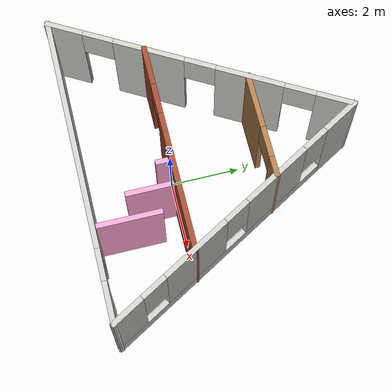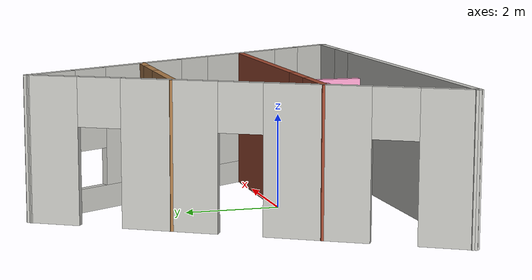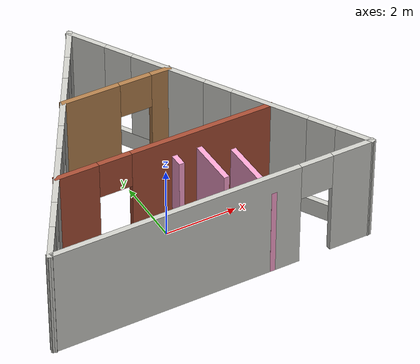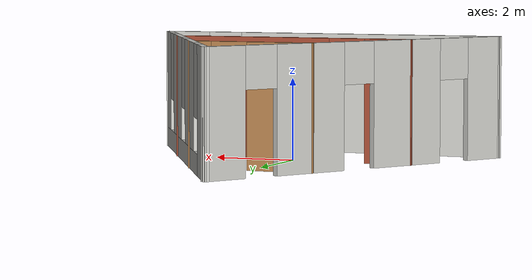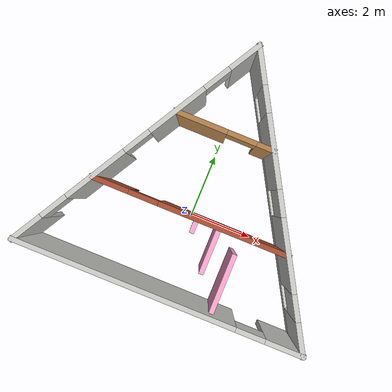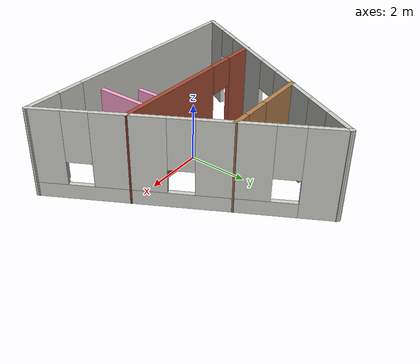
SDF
<?xml version='1.0'?>
<sdf version='1.6'>
  <model name='building'>
    <pose frame=''>3.5e-05 1.364 0 0 -0 0</pose>
    <link name='Wall_17'>
      <pose frame=''>-3.5e-05 -3.832 0 0 -0 3.14159</pose>
      <visual name='Wall_17_Visual_0'>
        <pose frame=''>-3.88835 0 1.5 0 -0 0</pose>
        <geometry>
          <box>
            <size>1.22339 0.15 3</size>
          </box>
        </geometry>
        <material>
          <script>
            <uri>file://media/materials/scripts/gazebo.material</uri>
            <name>Gazebo/CeilingTiled</name>
          </script>
          <ambient>1 1 1 1</ambient>
        </material>
        <meta>
          <layer>0</layer>
        </meta>
      </visual>
      <collision name='Wall_17_Collision_0'>
        <geometry>
          <box>
            <size>1.22339 0.15 3</size>
          </box>
        </geometry>
        <pose frame=''>-3.88835 0 1.5 0 -0 0</pose>
      </collision>
      <visual name='Wall_17_Visual_1'>
        <pose frame=''>1.06169 0 1.5 0 -0 0</pose>
        <geometry>
          <box>
            <size>6.87671 0.15 3</size>
          </box>
        </geometry>
        <material>
          <script>
            <uri>file://media/materials/scripts/gazebo.material</uri>
            <name>Gazebo/CeilingTiled</name>
          </script>
          <ambient>1 1 1 1</ambient>
        </material>
        <meta>
          <layer>0</layer>
        </meta>
      </visual>
      <collision name='Wall_17_Collision_1'>
        <geometry>
          <box>
            <size>6.87671 0.15 3</size>
          </box>
        </geometry>
        <pose frame=''>1.06169 0 1.5 0 -0 0</pose>
      </collision>
      <visual name='Wall_17_Visual_2'>
        <pose frame=''>-2.82666 0 2.5 0 -0 0</pose>
        <geometry>
          <box>
            <size>0.9 0.15 1</size>
          </box>
        </geometry>
        <material>
          <script>
            <uri>file://media/materials/scripts/gazebo.material</uri>
            <name>Gazebo/CeilingTiled</name>
          </script>
          <ambient>1 1 1 1</ambient>
        </material>
        <meta>
          <layer>0</layer>
        </meta>
      </visual>
      <collision name='Wall_17_Collision_2'>
        <geometry>
          <box>
            <size>0.9 0.15 1</size>
          </box>
        </geometry>
        <pose frame=''>-2.82666 0 2.5 0 -0 0</pose>
      </collision>
    </link>
    <link name='Wall_18'>
      <pose frame=''>-2.21253 0 0 0 -0 1.04718</pose>
      <visual name='Wall_18_Visual_0'>
        <pose frame=''>-3.94217 0 1.5 0 -0 0</pose>
        <geometry>
          <box>
            <size>1.11539 0.15 3</size>
          </box>
        </geometry>
        <material>
          <script>
            <uri>file://media/materials/scripts/gazebo.material</uri>
            <name>Gazebo/CeilingTiled</name>
          </script>
          <ambient>1 1 1 1</ambient>
        </material>
        <meta>
          <layer>0</layer>
        </meta>
      </visual>
      <collision name='Wall_18_Collision_0'>
        <geometry>
          <box>
            <size>1.11539 0.15 3</size>
          </box>
        </geometry>
        <pose frame=''>-3.94217 0 1.5 0 -0 0</pose>
      </collision>
      <visual name='Wall_18_Visual_1'>
        <pose frame=''>-1.44264 0 1.5 0 -0 0</pose>
        <geometry>
          <box>
            <size>2.08366 0.15 3</size>
          </box>
        </geometry>
        <material>
          <script>
            <uri>file://media/materials/scripts/gazebo.material</uri>
            <name>Gazebo/CeilingTiled</name>
          </script>
          <ambient>1 1 1 1</ambient>
        </material>
        <meta>
          <layer>0</layer>
        </meta>
      </visual>
      <collision name='Wall_18_Collision_1'>
        <geometry>
          <box>
            <size>2.08366 0.15 3</size>
          </box>
        </geometry>
        <pose frame=''>-1.44264 0 1.5 0 -0 0</pose>
      </collision>
      <visual name='Wall_18_Visual_2'>
        <pose frame=''>1.48473 0 1.5 0 -0 0</pose>
        <geometry>
          <box>
            <size>1.97108 0.15 3</size>
          </box>
        </geometry>
        <material>
          <script>
            <uri>file://media/materials/scripts/gazebo.material</uri>
            <name>Gazebo/CeilingTiled</name>
          </script>
          <ambient>1 1 1 1</ambient>
        </material>
        <meta>
          <layer>0</layer>
        </meta>
      </visual>
      <collision name='Wall_18_Collision_2'>
        <geometry>
          <box>
            <size>1.97108 0.15 3</size>
          </box>
        </geometry>
        <pose frame=''>1.48473 0 1.5 0 -0 0</pose>
      </collision>
      <visual name='Wall_18_Visual_3'>
        <pose frame=''>3.93506 0 1.5 0 -0 0</pose>
        <geometry>
          <box>
            <size>1.12959 0.15 3</size>
          </box>
        </geometry>
        <material>
          <script>
            <uri>file://media/materials/scripts/gazebo.material</uri>
            <name>Gazebo/CeilingTiled</name>
          </script>
          <ambient>1 1 1 1</ambient>
        </material>
        <meta>
          <layer>0</layer>
        </meta>
      </visual>
      <collision name='Wall_18_Collision_3'>
        <geometry>
          <box>
            <size>1.12959 0.15 3</size>
          </box>
        </geometry>
        <pose frame=''>3.93506 0 1.5 0 -0 0</pose>
      </collision>
      <visual name='Wall_18_Visual_4'>
        <pose frame=''>-2.93447 0 2.5 0 -0 0</pose>
        <geometry>
          <box>
            <size>0.9 0.15 1</size>
          </box>
        </geometry>
        <material>
          <script>
            <uri>file://media/materials/scripts/gazebo.material</uri>
            <name>Gazebo/CeilingTiled</name>
          </script>
          <ambient>1 1 1 1</ambient>
        </material>
        <meta>
          <layer>0</layer>
        </meta>
      </visual>
      <collision name='Wall_18_Collision_4'>
        <geometry>
          <box>
            <size>0.9 0.15 1</size>
          </box>
        </geometry>
        <pose frame=''>-2.93447 0 2.5 0 -0 0</pose>
      </collision>
      <visual name='Wall_18_Visual_5'>
        <pose frame=''>0.049189 0 2.5 0 -0 0</pose>
        <geometry>
          <box>
            <size>0.9 0.15 1</size>
          </box>
        </geometry>
        <material>
          <script>
            <uri>file://media/materials/scripts/gazebo.material</uri>
            <name>Gazebo/CeilingTiled</name>
          </script>
          <ambient>1 1 1 1</ambient>
        </material>
        <meta>
          <layer>0</layer>
        </meta>
      </visual>
      <collision name='Wall_18_Collision_5'>
        <geometry>
          <box>
            <size>0.9 0.15 1</size>
          </box>
        </geometry>
        <pose frame=''>0.049189 0 2.5 0 -0 0</pose>
      </collision>
      <visual name='Wall_18_Visual_6'>
        <pose frame=''>2.92027 0 2.5 0 -0 0</pose>
        <geometry>
          <box>
            <size>0.9 0.15 1</size>
          </box>
        </geometry>
        <material>
          <script>
            <uri>file://media/materials/scripts/gazebo.material</uri>
            <name>Gazebo/CeilingTiled</name>
          </script>
          <ambient>1 1 1 1</ambient>
        </material>
        <meta>
          <layer>0</layer>
        </meta>
      </visual>
      <collision name='Wall_18_Collision_6'>
        <geometry>
          <box>
            <size>0.9 0.15 1</size>
          </box>
        </geometry>
        <pose frame=''>2.92027 0 2.5 0 -0 0</pose>
      </collision>
    </link>
    <link name='Wall_19'>
      <pose frame=''>2.21246 0 0 0 0 -1.04718</pose>
      <visual name='Wall_19_Visual_0'>
        <pose frame=''>-3.90226 0 1.5 0 -0 0</pose>
        <geometry>
          <box>
            <size>1.19548 0.15 3</size>
          </box>
        </geometry>
        <material>
          <script>
            <uri>file://media/materials/scripts/gazebo.material</uri>
            <name>Gazebo/CeilingTiled</name>
          </script>
          <ambient>1 1 1 1</ambient>
        </material>
        <meta>
          <layer>0</layer>
        </meta>
      </visual>
      <collision name='Wall_19_Collision_0'>
        <geometry>
          <box>
            <size>1.19548 0.15 3</size>
          </box>
        </geometry>
        <pose frame=''>-3.90226 0 1.5 0 -0 0</pose>
      </collision>
      <visual name='Wall_19_Visual_1'>
        <pose frame=''>0.597741 0 0.25 0 -0 0</pose>
        <geometry>
          <box>
            <size>7.80452 0.15 0.5</size>
          </box>
        </geometry>
        <material>
          <script>
            <uri>file://media/materials/scripts/gazebo.material</uri>
            <name>Gazebo/CeilingTiled</name>
          </script>
          <ambient>1 1 1 1</ambient>
        </material>
        <meta>
          <layer>0</layer>
        </meta>
      </visual>
      <collision name='Wall_19_Collision_1'>
        <geometry>
          <box>
            <size>7.80452 0.15 0.5</size>
          </box>
        </geometry>
        <pose frame=''>0.597741 0 0.25 0 -0 0</pose>
      </collision>
      <visual name='Wall_19_Visual_2'>
        <pose frame=''>-1.42134 0 1.75 0 -0 0</pose>
        <geometry>
          <box>
            <size>2.16636 0.15 2.5</size>
          </box>
        </geometry>
        <material>
          <script>
            <uri>file://media/materials/scripts/gazebo.material</uri>
            <name>Gazebo/CeilingTiled</name>
          </script>
          <ambient>1 1 1 1</ambient>
        </material>
        <meta>
          <layer>0</layer>
        </meta>
      </visual>
      <collision name='Wall_19_Collision_2'>
        <geometry>
          <box>
            <size>2.16636 0.15 2.5</size>
          </box>
        </geometry>
        <pose frame=''>-1.42134 0 1.75 0 -0 0</pose>
      </collision>
      <visual name='Wall_19_Visual_3'>
        <pose frame=''>1.55403 0 1.75 0 -0 0</pose>
        <geometry>
          <box>
            <size>2.18438 0.15 2.5</size>
          </box>
        </geometry>
        <material>
          <script>
            <uri>file://media/materials/scripts/gazebo.material</uri>
            <name>Gazebo/CeilingTiled</name>
          </script>
          <ambient>1 1 1 1</ambient>
        </material>
        <meta>
          <layer>0</layer>
        </meta>
      </visual>
      <collision name='Wall_19_Collision_3'>
        <geometry>
          <box>
            <size>2.18438 0.15 2.5</size>
          </box>
        </geometry>
        <pose frame=''>1.55403 0 1.75 0 -0 0</pose>
      </collision>
      <visual name='Wall_19_Visual_4'>
        <pose frame=''>3.97311 0 1.75 0 -0 0</pose>
        <geometry>
          <box>
            <size>1.05378 0.15 2.5</size>
          </box>
        </geometry>
        <material>
          <script>
            <uri>file://media/materials/scripts/gazebo.material</uri>
            <name>Gazebo/CeilingTiled</name>
          </script>
          <ambient>1 1 1 1</ambient>
        </material>
        <meta>
          <layer>0</layer>
        </meta>
      </visual>
      <collision name='Wall_19_Collision_4'>
        <geometry>
          <box>
            <size>1.05378 0.15 2.5</size>
          </box>
        </geometry>
        <pose frame=''>3.97311 0 1.75 0 -0 0</pose>
      </collision>
      <visual name='Wall_19_Visual_5'>
        <pose frame=''>-2.90452 0 2.15 0 -0 0</pose>
        <geometry>
          <box>
            <size>0.8 0.15 1.7</size>
          </box>
        </geometry>
        <material>
          <script>
            <uri>file://media/materials/scripts/gazebo.material</uri>
            <name>Gazebo/CeilingTiled</name>
          </script>
          <ambient>1 1 1 1</ambient>
        </material>
        <meta>
          <layer>0</layer>
        </meta>
      </visual>
      <collision name='Wall_19_Collision_5'>
        <geometry>
          <box>
            <size>0.8 0.15 1.7</size>
          </box>
        </geometry>
        <pose frame=''>-2.90452 0 2.15 0 -0 0</pose>
      </collision>
      <visual name='Wall_19_Visual_6'>
        <pose frame=''>0.061841 0 2.15 0 -0 0</pose>
        <geometry>
          <box>
            <size>0.8 0.15 1.7</size>
          </box>
        </geometry>
        <material>
          <script>
            <uri>file://media/materials/scripts/gazebo.material</uri>
            <name>Gazebo/CeilingTiled</name>
          </script>
          <ambient>1 1 1 1</ambient>
        </material>
        <meta>
          <layer>0</layer>
        </meta>
      </visual>
      <collision name='Wall_19_Collision_6'>
        <geometry>
          <box>
            <size>0.8 0.15 1.7</size>
          </box>
        </geometry>
        <pose frame=''>0.061841 0 2.15 0 -0 0</pose>
      </collision>
      <visual name='Wall_19_Visual_7'>
        <pose frame=''>3.04622 0 2.15 0 -0 0</pose>
        <geometry>
          <box>
            <size>0.8 0.15 1.7</size>
          </box>
        </geometry>
        <material>
          <script>
            <uri>file://media/materials/scripts/gazebo.material</uri>
            <name>Gazebo/CeilingTiled</name>
          </script>
          <ambient>1 1 1 1</ambient>
        </material>
        <meta>
          <layer>0</layer>
        </meta>
      </visual>
      <collision name='Wall_19_Collision_7'>
        <geometry>
          <box>
            <size>0.8 0.15 1.7</size>
          </box>
        </geometry>
        <pose frame=''>3.04622 0 2.15 0 -0 0</pose>
      </collision>
    </link>
    <link name='Wall_21'>
      <pose frame=''>-3.5e-05 1.234 0 0 -0 0</pose>
      <visual name='Wall_21_Visual_0'>
        <pose frame=''>-0.748151 0 1.5 0 -0 0</pose>
        <geometry>
          <box>
            <size>1.6537 0.15 3</size>
          </box>
        </geometry>
        <material>
          <script>
            <uri>file://media/materials/scripts/gazebo.material</uri>
            <name>Gazebo/Wood</name>
          </script>
          <ambient>1 1 1 1</ambient>
        </material>
        <meta>
          <layer>0</layer>
        </meta>
      </visual>
      <collision name='Wall_21_Collision_0'>
        <geometry>
          <box>
            <size>1.6537 0.15 3</size>
          </box>
        </geometry>
        <pose frame=''>-0.748151 0 1.5 0 -0 0</pose>
      </collision>
      <visual name='Wall_21_Visual_1'>
        <pose frame=''>1.27685 0 1.5 0 -0 0</pose>
        <geometry>
          <box>
            <size>0.596303 0.15 3</size>
          </box>
        </geometry>
        <material>
          <script>
            <uri>file://media/materials/scripts/gazebo.material</uri>
            <name>Gazebo/Wood</name>
          </script>
          <ambient>1 1 1 1</ambient>
        </material>
        <meta>
          <layer>0</layer>
        </meta>
      </visual>
      <collision name='Wall_21_Collision_1'>
        <geometry>
          <box>
            <size>0.596303 0.15 3</size>
          </box>
        </geometry>
        <pose frame=''>1.27685 0 1.5 0 -0 0</pose>
      </collision>
      <visual name='Wall_21_Visual_2'>
        <pose frame=''>0.528697 0 2.5 0 -0 0</pose>
        <geometry>
          <box>
            <size>0.9 0.15 1</size>
          </box>
        </geometry>
        <material>
          <script>
            <uri>file://media/materials/scripts/gazebo.material</uri>
            <name>Gazebo/Wood</name>
          </script>
          <ambient>1 1 1 1</ambient>
        </material>
        <meta>
          <layer>0</layer>
        </meta>
      </visual>
      <collision name='Wall_21_Collision_2'>
        <geometry>
          <box>
            <size>0.9 0.15 1</size>
          </box>
        </geometry>
        <pose frame=''>0.528697 0 2.5 0 -0 0</pose>
      </collision>
    </link>
    <link name='Wall_23'>
      <pose frame=''>-3.5e-05 -1.364 0 0 -0 0</pose>
      <visual name='Wall_23_Visual_0'>
        <pose frame=''>-2.47728 0 1.5 0 -0 0</pose>
        <geometry>
          <box>
            <size>1.19543 0.15 3</size>
          </box>
        </geometry>
        <material>
          <script>
            <uri>file://media/materials/scripts/gazebo.material</uri>
            <name>Gazebo/Bricks</name>
          </script>
          <ambient>1 1 1 1</ambient>
        </material>
        <meta>
          <layer>0</layer>
        </meta>
      </visual>
      <collision name='Wall_23_Collision_0'>
        <geometry>
          <box>
            <size>1.19543 0.15 3</size>
          </box>
        </geometry>
        <pose frame=''>-2.47728 0 1.5 0 -0 0</pose>
      </collision>
      <visual name='Wall_23_Visual_1'>
        <pose frame=''>1.04772 0 1.5 0 -0 0</pose>
        <geometry>
          <box>
            <size>4.05457 0.15 3</size>
          </box>
        </geometry>
        <material>
          <script>
            <uri>file://media/materials/scripts/gazebo.material</uri>
            <name>Gazebo/Bricks</name>
          </script>
          <ambient>1 1 1 1</ambient>
        </material>
        <meta>
          <layer>0</layer>
        </meta>
      </visual>
      <collision name='Wall_23_Collision_1'>
        <geometry>
          <box>
            <size>4.05457 0.15 3</size>
          </box>
        </geometry>
        <pose frame=''>1.04772 0 1.5 0 -0 0</pose>
      </collision>
      <visual name='Wall_23_Visual_2'>
        <pose frame=''>-1.42957 0 2.5 0 -0 0</pose>
        <geometry>
          <box>
            <size>0.9 0.15 1</size>
          </box>
        </geometry>
        <material>
          <script>
            <uri>file://media/materials/scripts/gazebo.material</uri>
            <name>Gazebo/Bricks</name>
          </script>
          <ambient>1 1 1 1</ambient>
        </material>
        <meta>
          <layer>0</layer>
        </meta>
      </visual>
      <collision name='Wall_23_Collision_2'>
        <geometry>
          <box>
            <size>0.9 0.15 1</size>
          </box>
        </geometry>
        <pose frame=''>-1.42957 0 2.5 0 -0 0</pose>
      </collision>
    </link>
    <link name='Wall_27'>
      <collision name='Wall_27_Collision'>
        <geometry>
          <box>
            <size>2 0.15 2.5</size>
          </box>
        </geometry>
        <pose frame=''>0 0 1.25 0 -0 0</pose>
      </collision>
      <visual name='Wall_27_Visual'>
        <pose frame=''>0 0 1.25 0 -0 0</pose>
        <geometry>
          <box>
            <size>2 0.15 2.5</size>
          </box>
        </geometry>
        <material>
          <script>
            <uri>file://media/materials/scripts/gazebo.material</uri>
            <name>Gazebo/Grey</name>
          </script>
          <ambient>1 0.647059 0.819608 1</ambient>
        </material>
        <meta>
          <layer>0</layer>
        </meta>
      </visual>
      <pose frame=''>1.60797 -2.909 0 0 -0 1.5708</pose>
    </link>
    <link name='Wall_32'>
      <collision name='Wall_32_Collision'>
        <geometry>
          <box>
            <size>1.5 0.15 2.5</size>
          </box>
        </geometry>
        <pose frame=''>0 0 1.25 0 -0 0</pose>
      </collision>
      <visual name='Wall_32_Visual'>
        <pose frame=''>0 0 1.25 0 -0 0</pose>
        <geometry>
          <box>
            <size>1.5 0.15 2.5</size>
          </box>
        </geometry>
        <material>
          <script>
            <uri>file://media/materials/scripts/gazebo.material</uri>
            <name>Gazebo/Grey</name>
          </script>
          <ambient>1 0.647059 0.819608 1</ambient>
        </material>
        <meta>
          <layer>0</layer>
        </meta>
      </visual>
      <pose frame=''>0.907965 -2.059 0 0 0 -1.5708</pose>
    </link>
    <link name='Wall_36'>
      <collision name='Wall_36_Collision'>
        <geometry>
          <box>
            <size>0.5 0.15 2.5</size>
          </box>
        </geometry>
        <pose frame=''>0 0 1.25 0 -0 0</pose>
      </collision>
      <visual name='Wall_36_Visual'>
        <pose frame=''>0 0 1.25 0 -0 0</pose>
        <geometry>
          <box>
            <size>0.5 0.15 2.5</size>
          </box>
        </geometry>
        <material>
          <script>
            <uri>file://media/materials/scripts/gazebo.material</uri>
            <name>Gazebo/Grey</name>
          </script>
          <ambient>1 0.647059 0.819608 1</ambient>
        </material>
        <meta>
          <layer>0</layer>
        </meta>
      </visual>
      <pose frame=''>0.207706 -1.55923 0 0 0 -1.5708</pose>
    </link>
    <static>1</static>
  </model>
</sdf>
